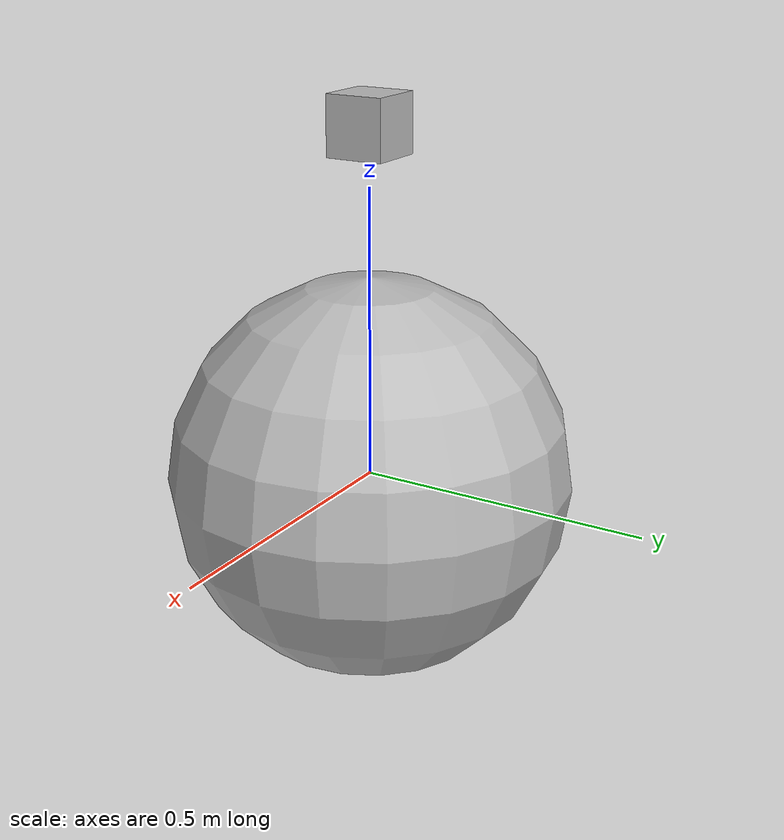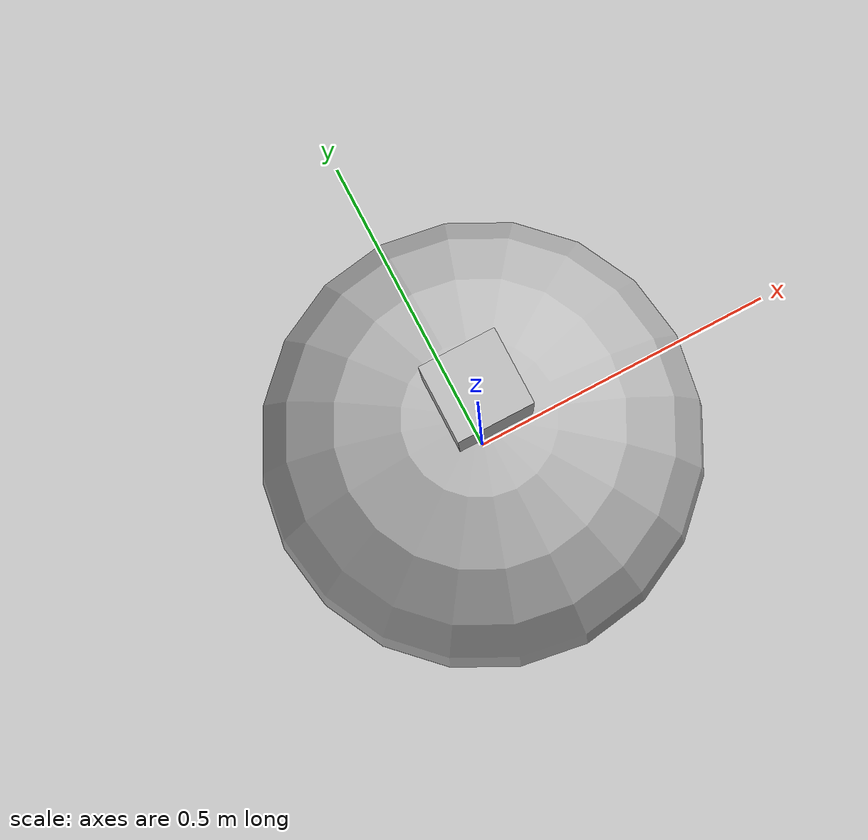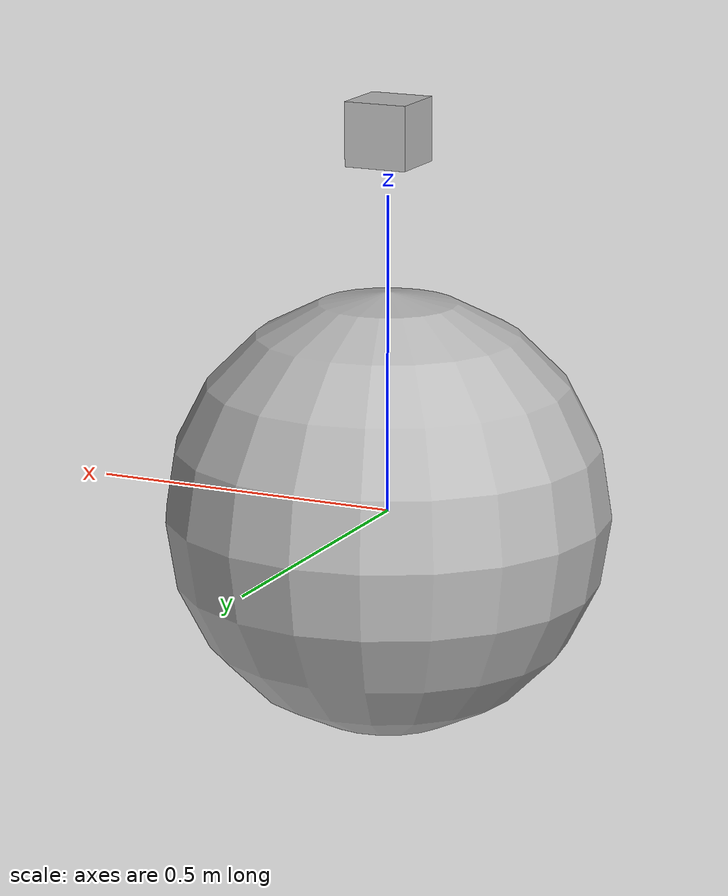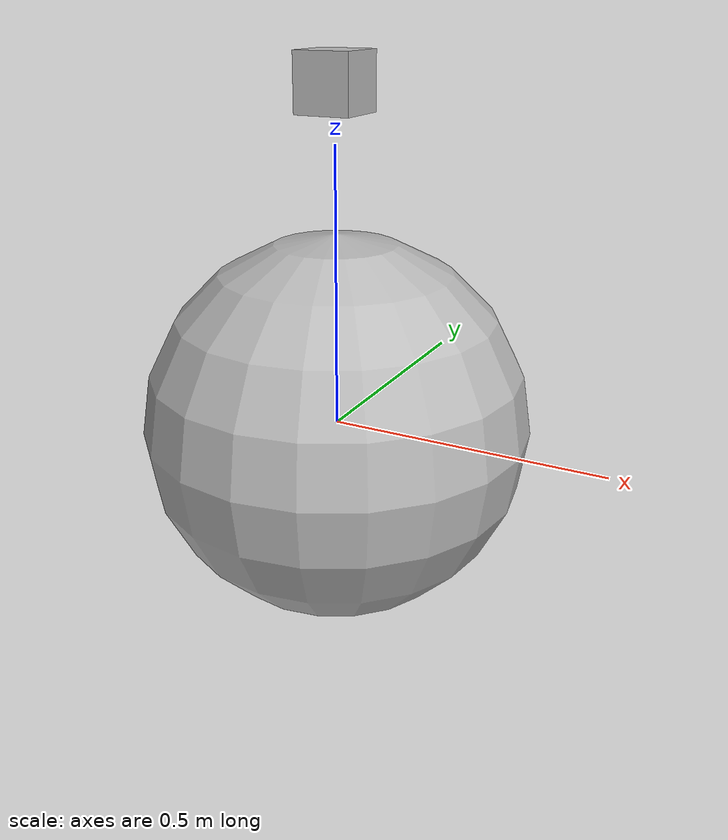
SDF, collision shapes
<sdf version='1.6'>
  <model name='bb_8'>
    <link name='base_link'>
      <pose frame=''>0 0 0 0 -0 0</pose>
      <inertial>
        <pose frame=''>0 0 -0.3 0 -0 0</pose>
        <mass>40</mass>
        <inertia>
          <ixx>0.16</ixx>
          <ixy>0</ixy>
          <ixz>0</ixz>
          <iyy>0.16</iyy>
          <iyz>0</iyz>
          <izz>0.16</izz>
        </inertia>
      </inertial>
      <collision name='base_link_collision'>
        <pose frame=''>0 0 0 0 -0 0</pose>
        <geometry>
          <sphere>
            <radius>0.1</radius>
          </sphere>
        </geometry>
      </collision>
      <visual name='base_link_visual'>
        <pose frame=''>0 0 0 0 -0 0</pose>
        <geometry>
          <sphere>
            <radius>0.1</radius>
          </sphere>
        </geometry>
      </visual>
    </link>
    <link name='base_rotation_link'>
      <pose frame=''>0 0 0 0 -0 0</pose>
      <inertial>
        <pose frame=''>0 0 0 0 -0 0</pose>
        <mass>1</mass>
        <inertia>
          <ixx>0.004</ixx>
          <ixy>0</ixy>
          <ixz>0</ixz>
          <iyy>0.004</iyy>
          <iyz>0</iyz>
          <izz>0.004</izz>
        </inertia>
      </inertial>
      <collision name='base_rotation_link_collision'>
        <pose frame=''>0 0 0 0 -0 0</pose>
        <geometry>
          <sphere>
            <radius>0.1</radius>
          </sphere>
        </geometry>
      </collision>
      <visual name='base_rotation_link_visual'>
        <pose frame=''>0 0 0 0 -0 0</pose>
        <geometry>
          <sphere>
            <radius>0.1</radius>
          </sphere>
        </geometry>
      </visual>
    </link>
    <joint name='rotation_joint' type='revolute'>
      <child>base_rotation_link</child>
      <parent>base_link</parent>
      <axis>
        <xyz>0 0 1</xyz>
        <limit>
          <lower>-1e+16</lower>
          <upper>1e+16</upper>
          <effort>18.85</effort>
          <velocity>0.3</velocity>
        </limit>
        <dynamics>
          <spring_reference>0</spring_reference>
          <spring_stiffness>0</spring_stiffness>
        </dynamics>
        <use_parent_model_frame>1</use_parent_model_frame>
      </axis>
    </joint>
    <link name='base_direction_link'>
      <pose frame=''>0 0 0 0 -0 0</pose>
      <inertial>
        <pose frame=''>0 0 0 0 -0 0</pose>
        <mass>1</mass>
        <inertia>
          <ixx>0.049</ixx>
          <ixy>0</ixy>
          <ixz>0</ixz>
          <iyy>0.049</iyy>
          <iyz>0</iyz>
          <izz>0.049</izz>
        </inertia>
      </inertial>
      <collision name='base_direction_link_collision'>
        <pose frame=''>0 0 0 0 -0 0</pose>
        <geometry>
          <sphere>
            <radius>0.35</radius>
          </sphere>
        </geometry>
      </collision>
      <visual name='base_direction_link_visual'>
        <pose frame=''>0 0 -0.35 0 -0 0</pose>
        <geometry>
          <mesh>
            <scale>1 1 1</scale>
            <uri>model://bb_8_description/meshes/bb8/ball_bb8/ball.dae</uri>
          </mesh>
        </geometry>
      </visual>
    </link>
    <joint name='direction_joint' type='revolute'>
      <child>base_direction_link</child>
      <parent>base_rotation_link</parent>
      <axis>
        <xyz>1 0 0</xyz>
        <limit>
          <lower>-1e+16</lower>
          <upper>1e+16</upper>
        </limit>
        <dynamics>
          <spring_reference>0</spring_reference>
          <spring_stiffness>0</spring_stiffness>
        </dynamics>
        <use_parent_model_frame>1</use_parent_model_frame>
      </axis>
    </joint>
    <link name='head_link'>
      <pose frame=''>0 0 0 0 -0 0</pose>
      <inertial>
        <pose frame=''>0 0 1.2e-05 0 -0 0</pose>
        <mass>0.50001</mass>
        <inertia>
          <ixx>0.0080046</ixx>
          <ixy>-1.03398e-25</ixy>
          <ixz>0</ixz>
          <iyy>0.0080046</iyy>
          <iyz>0</iyz>
          <izz>0.008001</izz>
        </inertia>
      </inertial>
      <collision name='head_link_collision'>
        <pose frame=''>0 -0 -0 1.56 -0 0</pose>
        <geometry>
          <sphere>
            <radius>0.2</radius>
          </sphere>
        </geometry>
      </collision>
      <collision name='head_link_fixed_joint_lump__camera_link_collision_1'>
        <pose frame=''>0 0 0.6 0 -0 1.57</pose>
        <geometry>
          <box>
            <size>0.1 0.1 0.1</size>
          </box>
        </geometry>
      </collision>
      <visual name='head_link_visual'>
        <pose frame=''>0 0 -0.35 0 -0 3.14</pose>
        <geometry>
          <mesh>
            <scale>1 1 1</scale>
            <uri>model://bb_8_description/meshes/bb8/head_bb8/head.dae</uri>
          </mesh>
        </geometry>
      </visual>
    </link>
    <joint name='head_joint' type='revolute'>
      <child>head_link</child>
      <parent>base_rotation_link</parent>
      <axis>
        <xyz>0 0 1</xyz>
        <limit>
          <lower>-1e+16</lower>
          <upper>1e+16</upper>
          <effort>0.1</effort>
          <velocity>0.1</velocity>
        </limit>
        <dynamics>
          <spring_reference>0</spring_reference>
          <spring_stiffness>0</spring_stiffness>
        </dynamics>
        <use_parent_model_frame>1</use_parent_model_frame>
      </axis>
    </joint>
  </model>
</sdf>
